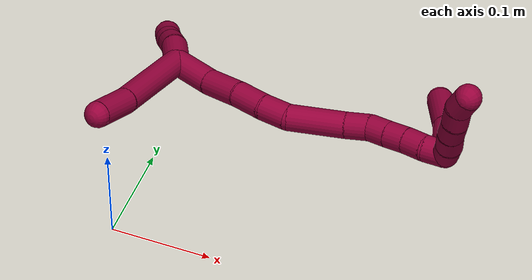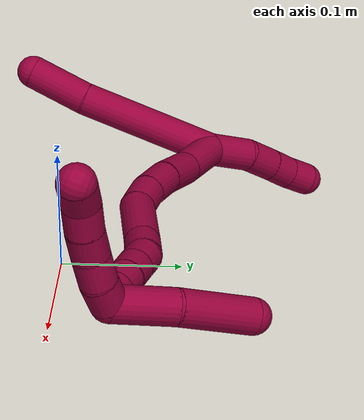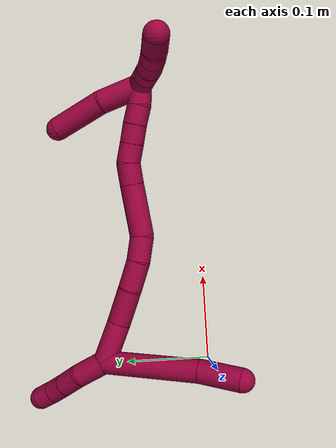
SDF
<sdf version="1.7">
 <world name="default">
  <model name="8">
   <static>0</static>
   <link name="8">
    <collision name="collision-cylinder-e_1_2_8">
     <pose>0.004044 0.00127 -0.052372 -3.11734 0.077033 -2.5318</pose>
     <geometry><cylinder><radius>0.0125</radius><length>0.105086</length></cylinder></geometry>
     <surface>
      <friction><ode><mu>1.16</mu><mu2>1.16</mu2><slip1>0</slip1><slip2>0</slip2></ode></friction>
      <contact><ode><kp>1e+06</kp><kd>1</kd><max_vel>0</max_vel><min_depth>0.001</min_depth></ode></contact>
     </surface>
    </collision>
    <visual name="visual-cylinder-e_1_2_8">
     <pose>0.004044 0.00127 -0.052372 -3.11734 0.077033 -2.5318</pose>
     <geometry><cylinder><radius>0.0125</radius><length>0.105086</length></cylinder></geometry>
     <material><ambient>0.584314 0 0.227451 1</ambient></material>
    </visual>
    <collision name="collision-cylinder-e_2_8_6">
     <pose>0.009249 0.000531 -0.12708 3.05186 0.051764 1.04608</pose>
     <geometry><cylinder><radius>0.0125</radius><length>0.044914</length></cylinder></geometry>
     <surface>
      <friction><ode><mu>1.16</mu><mu2>1.16</mu2><slip1>0</slip1><slip2>0</slip2></ode></friction>
      <contact><ode><kp>1e+06</kp><kd>1</kd><max_vel>0</max_vel><min_depth>0.001</min_depth></ode></contact>
     </surface>
    </collision>
    <visual name="visual-cylinder-e_2_8_6">
     <pose>0.009249 0.000531 -0.12708 3.05186 0.051764 1.04608</pose>
     <geometry><cylinder><radius>0.0125</radius><length>0.044914</length></cylinder></geometry>
     <material><ambient>0.584314 0 0.227451 1</ambient></material>
    </visual>
    <collision name="collision-cylinder-e_1_2_9">
     <pose>-0.007266 -0.006409 0.014095 0.426724 -0.438755 -0.09654</pose>
     <geometry><cylinder><radius>0.0125</radius><length>0.034208</length></cylinder></geometry>
     <surface>
      <friction><ode><mu>1.16</mu><mu2>1.16</mu2><slip1>0</slip1><slip2>0</slip2></ode></friction>
      <contact><ode><kp>1e+06</kp><kd>1</kd><max_vel>0</max_vel><min_depth>0.001</min_depth></ode></contact>
     </surface>
    </collision>
    <visual name="visual-cylinder-e_1_2_9">
     <pose>-0.007266 -0.006409 0.014095 0.426724 -0.438755 -0.09654</pose>
     <geometry><cylinder><radius>0.0125</radius><length>0.034208</length></cylinder></geometry>
     <material><ambient>0.584314 0 0.227451 1</ambient></material>
    </visual>
    <collision name="collision-cylinder-e_2_9_10">
     <pose>-0.022415 -0.015649 0.037852 0.285134 -0.66426 -0.098936</pose>
     <geometry><cylinder><radius>0.0125</radius><length>0.025573</length></cylinder></geometry>
     <surface>
      <friction><ode><mu>1.16</mu><mu2>1.16</mu2><slip1>0</slip1><slip2>0</slip2></ode></friction>
      <contact><ode><kp>1e+06</kp><kd>1</kd><max_vel>0</max_vel><min_depth>0.001</min_depth></ode></contact>
     </surface>
    </collision>
    <visual name="visual-cylinder-e_2_9_10">
     <pose>-0.022415 -0.015649 0.037852 0.285134 -0.66426 -0.098936</pose>
     <geometry><cylinder><radius>0.0125</radius><length>0.025573</length></cylinder></geometry>
     <material><ambient>0.584314 0 0.227451 1</ambient></material>
    </visual>
    <collision name="collision-cylinder-e_3_10_11">
     <pose>-0.036554 -0.02045 0.055197 0.250796 -0.667892 -0.087414</pose>
     <geometry><cylinder><radius>0.0125</radius><length>0.020206</length></cylinder></geometry>
     <surface>
      <friction><ode><mu>1.16</mu><mu2>1.16</mu2><slip1>0</slip1><slip2>0</slip2></ode></friction>
      <contact><ode><kp>1e+06</kp><kd>1</kd><max_vel>0</max_vel><min_depth>0.001</min_depth></ode></contact>
     </surface>
    </collision>
    <visual name="visual-cylinder-e_3_10_11">
     <pose>-0.036554 -0.02045 0.055197 0.250796 -0.667892 -0.087414</pose>
     <geometry><cylinder><radius>0.0125</radius><length>0.020206</length></cylinder></geometry>
     <material><ambient>0.584314 0 0.227451 1</ambient></material>
    </visual>
    <collision name="collision-cylinder-e_4_11_5">
     <pose>-0.04814 -0.024811 0.071006 0.286404 -0.561555 -0.083119</pose>
     <geometry><cylinder><radius>0.0125</radius><length>0.020013</length></cylinder></geometry>
     <surface>
      <friction><ode><mu>1.16</mu><mu2>1.16</mu2><slip1>0</slip1><slip2>0</slip2></ode></friction>
      <contact><ode><kp>1e+06</kp><kd>1</kd><max_vel>0</max_vel><min_depth>0.001</min_depth></ode></contact>
     </surface>
    </collision>
    <visual name="visual-cylinder-e_4_11_5">
     <pose>-0.04814 -0.024811 0.071006 0.286404 -0.561555 -0.083119</pose>
     <geometry><cylinder><radius>0.0125</radius><length>0.020013</length></cylinder></geometry>
     <material><ambient>0.584314 0 0.227451 1</ambient></material>
    </visual>
    <collision name="collision-cylinder-e_1_2_12">
     <pose>0.014667 0.016564 -0.005846 -1.9101 0.695692 -0.947177</pose>
     <geometry><cylinder><radius>0.0125</radius><length>0.045768</length></cylinder></geometry>
     <surface>
      <friction><ode><mu>1.16</mu><mu2>1.16</mu2><slip1>0</slip1><slip2>0</slip2></ode></friction>
      <contact><ode><kp>1e+06</kp><kd>1</kd><max_vel>0</max_vel><min_depth>0.001</min_depth></ode></contact>
     </surface>
    </collision>
    <visual name="visual-cylinder-e_1_2_12">
     <pose>0.014667 0.016564 -0.005846 -1.9101 0.695692 -0.947177</pose>
     <geometry><cylinder><radius>0.0125</radius><length>0.045768</length></cylinder></geometry>
     <material><ambient>0.584314 0 0.227451 1</ambient></material>
    </visual>
    <collision name="collision-cylinder-e_2_12_13">
     <pose>0.043643 0.044958 -0.01675 -1.97481 0.838486 -1.1878</pose>
     <geometry><cylinder><radius>0.0125</radius><length>0.038485</length></cylinder></geometry>
     <surface>
      <friction><ode><mu>1.16</mu><mu2>1.16</mu2><slip1>0</slip1><slip2>0</slip2></ode></friction>
      <contact><ode><kp>1e+06</kp><kd>1</kd><max_vel>0</max_vel><min_depth>0.001</min_depth></ode></contact>
     </surface>
    </collision>
    <visual name="visual-cylinder-e_2_12_13">
     <pose>0.043643 0.044958 -0.01675 -1.97481 0.838486 -1.1878</pose>
     <geometry><cylinder><radius>0.0125</radius><length>0.038485</length></cylinder></geometry>
     <material><ambient>0.584314 0 0.227451 1</ambient></material>
    </visual>
    <collision name="collision-cylinder-e_3_13_14">
     <pose>0.068492 0.067782 -0.025084 -1.86039 0.743095 -0.963246</pose>
     <geometry><cylinder><radius>0.0125</radius><length>0.031158</length></cylinder></geometry>
     <surface>
      <friction><ode><mu>1.16</mu><mu2>1.16</mu2><slip1>0</slip1><slip2>0</slip2></ode></friction>
      <contact><ode><kp>1e+06</kp><kd>1</kd><max_vel>0</max_vel><min_depth>0.001</min_depth></ode></contact>
     </surface>
    </collision>
    <visual name="visual-cylinder-e_3_13_14">
     <pose>0.068492 0.067782 -0.025084 -1.86039 0.743095 -0.963246</pose>
     <geometry><cylinder><radius>0.0125</radius><length>0.031158</length></cylinder></geometry>
     <material><ambient>0.584314 0 0.227451 1</ambient></material>
    </visual>
    <collision name="collision-cylinder-e_4_14_15">
     <pose>0.087989 0.088644 -0.028949 -1.63048 0.736149 -0.777138</pose>
     <geometry><cylinder><radius>0.0125</radius><length>0.02668</length></cylinder></geometry>
     <surface>
      <friction><ode><mu>1.16</mu><mu2>1.16</mu2><slip1>0</slip1><slip2>0</slip2></ode></friction>
      <contact><ode><kp>1e+06</kp><kd>1</kd><max_vel>0</max_vel><min_depth>0.001</min_depth></ode></contact>
     </surface>
    </collision>
    <visual name="visual-cylinder-e_4_14_15">
     <pose>0.087989 0.088644 -0.028949 -1.63048 0.736149 -0.777138</pose>
     <geometry><cylinder><radius>0.0125</radius><length>0.02668</length></cylinder></geometry>
     <material><ambient>0.584314 0 0.227451 1</ambient></material>
    </visual>
    <collision name="collision-cylinder-e_5_15_16">
     <pose>0.11679 0.116041 -0.022213 -1.17492 0.807198 -0.554097</pose>
     <geometry><cylinder><radius>0.0125</radius><length>0.054944</length></cylinder></geometry>
     <surface>
      <friction><ode><mu>1.16</mu><mu2>1.16</mu2><slip1>0</slip1><slip2>0</slip2></ode></friction>
      <contact><ode><kp>1e+06</kp><kd>1</kd><max_vel>0</max_vel><min_depth>0.001</min_depth></ode></contact>
     </surface>
    </collision>
    <visual name="visual-cylinder-e_5_15_16">
     <pose>0.11679 0.116041 -0.022213 -1.17492 0.807198 -0.554097</pose>
     <geometry><cylinder><radius>0.0125</radius><length>0.054944</length></cylinder></geometry>
     <material><ambient>0.584314 0 0.227451 1</ambient></material>
    </visual>
    <collision name="collision-cylinder-e_6_16_17">
     <pose>0.145538 0.140367 -0.012409 -1.22117 0.888352 -0.642945</pose>
     <geometry><cylinder><radius>0.0125</radius><length>0.022945</length></cylinder></geometry>
     <surface>
      <friction><ode><mu>1.16</mu><mu2>1.16</mu2><slip1>0</slip1><slip2>0</slip2></ode></friction>
      <contact><ode><kp>1e+06</kp><kd>1</kd><max_vel>0</max_vel><min_depth>0.001</min_depth></ode></contact>
     </surface>
    </collision>
    <visual name="visual-cylinder-e_6_16_17">
     <pose>0.145538 0.140367 -0.012409 -1.22117 0.888352 -0.642945</pose>
     <geometry><cylinder><radius>0.0125</radius><length>0.022945</length></cylinder></geometry>
     <material><ambient>0.584314 0 0.227451 1</ambient></material>
    </visual>
    <collision name="collision-cylinder-e_7_17_18">
     <pose>0.161694 0.153961 -0.011065 -1.7362 0.811071 -0.938369</pose>
     <geometry><cylinder><radius>0.0125</radius><length>0.020008</length></cylinder></geometry>
     <surface>
      <friction><ode><mu>1.16</mu><mu2>1.16</mu2><slip1>0</slip1><slip2>0</slip2></ode></friction>
      <contact><ode><kp>1e+06</kp><kd>1</kd><max_vel>0</max_vel><min_depth>0.001</min_depth></ode></contact>
     </surface>
    </collision>
    <visual name="visual-cylinder-e_7_17_18">
     <pose>0.161694 0.153961 -0.011065 -1.7362 0.811071 -0.938369</pose>
     <geometry><cylinder><radius>0.0125</radius><length>0.020008</length></cylinder></geometry>
     <material><ambient>0.584314 0 0.227451 1</ambient></material>
    </visual>
    <collision name="collision-cylinder-e_8_18_19">
     <pose>0.176387 0.167372 -0.013185 -1.71865 0.838479 -0.954236</pose>
     <geometry><cylinder><radius>0.0125</radius><length>0.020008</length></cylinder></geometry>
     <surface>
      <friction><ode><mu>1.16</mu><mu2>1.16</mu2><slip1>0</slip1><slip2>0</slip2></ode></friction>
      <contact><ode><kp>1e+06</kp><kd>1</kd><max_vel>0</max_vel><min_depth>0.001</min_depth></ode></contact>
     </surface>
    </collision>
    <visual name="visual-cylinder-e_8_18_19">
     <pose>0.176387 0.167372 -0.013185 -1.71865 0.838479 -0.954236</pose>
     <geometry><cylinder><radius>0.0125</radius><length>0.020008</length></cylinder></geometry>
     <material><ambient>0.584314 0 0.227451 1</ambient></material>
    </visual>
    <collision name="collision-cylinder-e_9_19_20">
     <pose>0.190904 0.180882 -0.015722 -1.79227 0.786202 -0.956585</pose>
     <geometry><cylinder><radius>0.0125</radius><length>0.020005</length></cylinder></geometry>
     <surface>
      <friction><ode><mu>1.16</mu><mu2>1.16</mu2><slip1>0</slip1><slip2>0</slip2></ode></friction>
      <contact><ode><kp>1e+06</kp><kd>1</kd><max_vel>0</max_vel><min_depth>0.001</min_depth></ode></contact>
     </surface>
    </collision>
    <visual name="visual-cylinder-e_9_19_20">
     <pose>0.190904 0.180882 -0.015722 -1.79227 0.786202 -0.956585</pose>
     <geometry><cylinder><radius>0.0125</radius><length>0.020005</length></cylinder></geometry>
     <material><ambient>0.584314 0 0.227451 1</ambient></material>
    </visual>
    <collision name="collision-cylinder-e_10_20_1">
     <pose>0.205107 0.194772 -0.016721 -1.49173 0.792996 -0.738172</pose>
     <geometry><cylinder><radius>0.0125</radius><length>0.02</length></cylinder></geometry>
     <surface>
      <friction><ode><mu>1.16</mu><mu2>1.16</mu2><slip1>0</slip1><slip2>0</slip2></ode></friction>
      <contact><ode><kp>1e+06</kp><kd>1</kd><max_vel>0</max_vel><min_depth>0.001</min_depth></ode></contact>
     </surface>
    </collision>
    <visual name="visual-cylinder-e_10_20_1">
     <pose>0.205107 0.194772 -0.016721 -1.49173 0.792996 -0.738172</pose>
     <geometry><cylinder><radius>0.0125</radius><length>0.02</length></cylinder></geometry>
     <material><ambient>0.584314 0 0.227451 1</ambient></material>
    </visual>
    <collision name="collision-cylinder-e_1_1_21">
     <pose>0.207341 0.193347 0.003538 0.403834 -0.224424 -0.046127</pose>
     <geometry><cylinder><radius>0.0125</radius><length>0.043958</length></cylinder></geometry>
     <surface>
      <friction><ode><mu>1.16</mu><mu2>1.16</mu2><slip1>0</slip1><slip2>0</slip2></ode></friction>
      <contact><ode><kp>1e+06</kp><kd>1</kd><max_vel>0</max_vel><min_depth>0.001</min_depth></ode></contact>
     </surface>
    </collision>
    <visual name="visual-cylinder-e_1_1_21">
     <pose>0.207341 0.193347 0.003538 0.403834 -0.224424 -0.046127</pose>
     <geometry><cylinder><radius>0.0125</radius><length>0.043958</length></cylinder></geometry>
     <material><ambient>0.584314 0 0.227451 1</ambient></material>
    </visual>
    <collision name="collision-cylinder-e_2_21_4">
     <pose>0.191283 0.175168 0.047017 0.3895 -0.409873 -0.081953</pose>
     <geometry><cylinder><radius>0.0125</radius><length>0.056042</length></cylinder></geometry>
     <surface>
      <friction><ode><mu>1.16</mu><mu2>1.16</mu2><slip1>0</slip1><slip2>0</slip2></ode></friction>
      <contact><ode><kp>1e+06</kp><kd>1</kd><max_vel>0</max_vel><min_depth>0.001</min_depth></ode></contact>
     </surface>
    </collision>
    <visual name="visual-cylinder-e_2_21_4">
     <pose>0.191283 0.175168 0.047017 0.3895 -0.409873 -0.081953</pose>
     <geometry><cylinder><radius>0.0125</radius><length>0.056042</length></cylinder></geometry>
     <material><ambient>0.584314 0 0.227451 1</ambient></material>
    </visual>
    <collision name="collision-cylinder-e_1_1_22">
     <pose>0.220262 0.198758 -0.021311 2.61226 0.932306 2.1534</pose>
     <geometry><cylinder><radius>0.0125</radius><length>0.02</length></cylinder></geometry>
     <surface>
      <friction><ode><mu>1.16</mu><mu2>1.16</mu2><slip1>0</slip1><slip2>0</slip2></ode></friction>
      <contact><ode><kp>1e+06</kp><kd>1</kd><max_vel>0</max_vel><min_depth>0.001</min_depth></ode></contact>
     </surface>
    </collision>
    <visual name="visual-cylinder-e_1_1_22">
     <pose>0.220262 0.198758 -0.021311 2.61226 0.932306 2.1534</pose>
     <geometry><cylinder><radius>0.0125</radius><length>0.02</length></cylinder></geometry>
     <material><ambient>0.584314 0 0.227451 1</ambient></material>
    </visual>
    <collision name="collision-cylinder-e_2_22_23">
     <pose>0.235744 0.191096 -0.031232 2.36941 0.840797 1.66576</pose>
     <geometry><cylinder><radius>0.0125</radius><length>0.02</length></cylinder></geometry>
     <surface>
      <friction><ode><mu>1.16</mu><mu2>1.16</mu2><slip1>0</slip1><slip2>0</slip2></ode></friction>
      <contact><ode><kp>1e+06</kp><kd>1</kd><max_vel>0</max_vel><min_depth>0.001</min_depth></ode></contact>
     </surface>
    </collision>
    <visual name="visual-cylinder-e_2_22_23">
     <pose>0.235744 0.191096 -0.031232 2.36941 0.840797 1.66576</pose>
     <geometry><cylinder><radius>0.0125</radius><length>0.02</length></cylinder></geometry>
     <material><ambient>0.584314 0 0.227451 1</ambient></material>
    </visual>
    <collision name="collision-cylinder-e_3_23_24">
     <pose>0.251383 0.182379 -0.040065 2.35513 0.959296 1.79515</pose>
     <geometry><cylinder><radius>0.0125</radius><length>0.02</length></cylinder></geometry>
     <surface>
      <friction><ode><mu>1.16</mu><mu2>1.16</mu2><slip1>0</slip1><slip2>0</slip2></ode></friction>
      <contact><ode><kp>1e+06</kp><kd>1</kd><max_vel>0</max_vel><min_depth>0.001</min_depth></ode></contact>
     </surface>
    </collision>
    <visual name="visual-cylinder-e_3_23_24">
     <pose>0.251383 0.182379 -0.040065 2.35513 0.959296 1.79515</pose>
     <geometry><cylinder><radius>0.0125</radius><length>0.02</length></cylinder></geometry>
     <material><ambient>0.584314 0 0.227451 1</ambient></material>
    </visual>
    <collision name="collision-cylinder-e_4_24_25">
     <pose>0.267546 0.173376 -0.047584 2.18244 0.923096 1.52619</pose>
     <geometry><cylinder><radius>0.0125</radius><length>0.02</length></cylinder></geometry>
     <surface>
      <friction><ode><mu>1.16</mu><mu2>1.16</mu2><slip1>0</slip1><slip2>0</slip2></ode></friction>
      <contact><ode><kp>1e+06</kp><kd>1</kd><max_vel>0</max_vel><min_depth>0.001</min_depth></ode></contact>
     </surface>
    </collision>
    <visual name="visual-cylinder-e_4_24_25">
     <pose>0.267546 0.173376 -0.047584 2.18244 0.923096 1.52619</pose>
     <geometry><cylinder><radius>0.0125</radius><length>0.02</length></cylinder></geometry>
     <material><ambient>0.584314 0 0.227451 1</ambient></material>
    </visual>
    <collision name="collision-cylinder-e_5_25_3">
     <pose>0.284872 0.166229 -0.05382 2.46916 1.20869 2.20454</pose>
     <geometry><cylinder><radius>0.0125</radius><length>0.02</length></cylinder></geometry>
     <surface>
      <friction><ode><mu>1.16</mu><mu2>1.16</mu2><slip1>0</slip1><slip2>0</slip2></ode></friction>
      <contact><ode><kp>1e+06</kp><kd>1</kd><max_vel>0</max_vel><min_depth>0.001</min_depth></ode></contact>
     </surface>
    </collision>
    <visual name="visual-cylinder-e_5_25_3">
     <pose>0.284872 0.166229 -0.05382 2.46916 1.20869 2.20454</pose>
     <geometry><cylinder><radius>0.0125</radius><length>0.02</length></cylinder></geometry>
     <material><ambient>0.584314 0 0.227451 1</ambient></material>
    </visual>
    <collision name="collision-sphere-3">
     <pose>0.294224 0.164023 -0.056591 0 -0 0</pose>
     <geometry><sphere><radius>0.0125</radius></sphere></geometry>
     <surface>
      <friction><ode><mu>1.16</mu><mu2>1.16</mu2><slip1>0</slip1><slip2>0</slip2></ode></friction>
      <contact><ode><kp>1e+06</kp><kd>1</kd><max_vel>0</max_vel><min_depth>0.001</min_depth></ode></contact>
     </surface>
    </collision>
    <visual name="visual-sphere-3">
     <pose>0.294224 0.164023 -0.056591 0 -0 0</pose>
     <geometry><sphere><radius>0.0125</radius></sphere></geometry>
     <material><ambient>0.584314 0 0.227451 1</ambient></material>
    </visual>
    <collision name="collision-sphere-25">
     <pose>0.275521 0.168436 -0.051049 0 -0 0</pose>
     <geometry><sphere><radius>0.0125</radius></sphere></geometry>
     <surface>
      <friction><ode><mu>1.16</mu><mu2>1.16</mu2><slip1>0</slip1><slip2>0</slip2></ode></friction>
      <contact><ode><kp>1e+06</kp><kd>1</kd><max_vel>0</max_vel><min_depth>0.001</min_depth></ode></contact>
     </surface>
    </collision>
    <visual name="visual-sphere-25">
     <pose>0.275521 0.168436 -0.051049 0 -0 0</pose>
     <geometry><sphere><radius>0.0125</radius></sphere></geometry>
     <material><ambient>0.584314 0 0.227451 1</ambient></material>
    </visual>
    <collision name="collision-sphere-24">
     <pose>0.259571 0.178315 -0.04412 0 -0 0</pose>
     <geometry><sphere><radius>0.0125</radius></sphere></geometry>
     <surface>
      <friction><ode><mu>1.16</mu><mu2>1.16</mu2><slip1>0</slip1><slip2>0</slip2></ode></friction>
      <contact><ode><kp>1e+06</kp><kd>1</kd><max_vel>0</max_vel><min_depth>0.001</min_depth></ode></contact>
     </surface>
    </collision>
    <visual name="visual-sphere-24">
     <pose>0.259571 0.178315 -0.04412 0 -0 0</pose>
     <geometry><sphere><radius>0.0125</radius></sphere></geometry>
     <material><ambient>0.584314 0 0.227451 1</ambient></material>
    </visual>
    <collision name="collision-sphere-23">
     <pose>0.243196 0.186443 -0.03601 0 -0 0</pose>
     <geometry><sphere><radius>0.0125</radius></sphere></geometry>
     <surface>
      <friction><ode><mu>1.16</mu><mu2>1.16</mu2><slip1>0</slip1><slip2>0</slip2></ode></friction>
      <contact><ode><kp>1e+06</kp><kd>1</kd><max_vel>0</max_vel><min_depth>0.001</min_depth></ode></contact>
     </surface>
    </collision>
    <visual name="visual-sphere-23">
     <pose>0.243196 0.186443 -0.03601 0 -0 0</pose>
     <geometry><sphere><radius>0.0125</radius></sphere></geometry>
     <material><ambient>0.584314 0 0.227451 1</ambient></material>
    </visual>
    <collision name="collision-sphere-22">
     <pose>0.228292 0.195748 -0.026455 0 -0 0</pose>
     <geometry><sphere><radius>0.0125</radius></sphere></geometry>
     <surface>
      <friction><ode><mu>1.16</mu><mu2>1.16</mu2><slip1>0</slip1><slip2>0</slip2></ode></friction>
      <contact><ode><kp>1e+06</kp><kd>1</kd><max_vel>0</max_vel><min_depth>0.001</min_depth></ode></contact>
     </surface>
    </collision>
    <visual name="visual-sphere-22">
     <pose>0.228292 0.195748 -0.026455 0 -0 0</pose>
     <geometry><sphere><radius>0.0125</radius></sphere></geometry>
     <material><ambient>0.584314 0 0.227451 1</ambient></material>
    </visual>
    <collision name="collision-sphere-4">
     <pose>0.180117 0.165409 0.070792 0 -0 0</pose>
     <geometry><sphere><radius>0.0125</radius></sphere></geometry>
     <surface>
      <friction><ode><mu>1.16</mu><mu2>1.16</mu2><slip1>0</slip1><slip2>0</slip2></ode></friction>
      <contact><ode><kp>1e+06</kp><kd>1</kd><max_vel>0</max_vel><min_depth>0.001</min_depth></ode></contact>
     </surface>
    </collision>
    <visual name="visual-sphere-4">
     <pose>0.180117 0.165409 0.070792 0 -0 0</pose>
     <geometry><sphere><radius>0.0125</radius></sphere></geometry>
     <material><ambient>0.584314 0 0.227451 1</ambient></material>
    </visual>
    <collision name="collision-sphere-21">
     <pose>0.20245 0.184928 0.023242 0 -0 0</pose>
     <geometry><sphere><radius>0.0125</radius></sphere></geometry>
     <surface>
      <friction><ode><mu>1.16</mu><mu2>1.16</mu2><slip1>0</slip1><slip2>0</slip2></ode></friction>
      <contact><ode><kp>1e+06</kp><kd>1</kd><max_vel>0</max_vel><min_depth>0.001</min_depth></ode></contact>
     </surface>
    </collision>
    <visual name="visual-sphere-21">
     <pose>0.20245 0.184928 0.023242 0 -0 0</pose>
     <geometry><sphere><radius>0.0125</radius></sphere></geometry>
     <material><ambient>0.584314 0 0.227451 1</ambient></material>
    </visual>
    <collision name="collision-sphere-1">
     <pose>0.212232 0.201767 -0.016166 0 -0 0</pose>
     <geometry><sphere><radius>0.0125</radius></sphere></geometry>
     <surface>
      <friction><ode><mu>1.16</mu><mu2>1.16</mu2><slip1>0</slip1><slip2>0</slip2></ode></friction>
      <contact><ode><kp>1e+06</kp><kd>1</kd><max_vel>0</max_vel><min_depth>0.001</min_depth></ode></contact>
     </surface>
    </collision>
    <visual name="visual-sphere-1">
     <pose>0.212232 0.201767 -0.016166 0 -0 0</pose>
     <geometry><sphere><radius>0.0125</radius></sphere></geometry>
     <material><ambient>0.584314 0 0.227451 1</ambient></material>
    </visual>
    <collision name="collision-sphere-11">
     <pose>-0.042811 -0.022418 0.062881 0 -0 0</pose>
     <geometry><sphere><radius>0.0125</radius></sphere></geometry>
     <surface>
      <friction><ode><mu>1.16</mu><mu2>1.16</mu2><slip1>0</slip1><slip2>0</slip2></ode></friction>
      <contact><ode><kp>1e+06</kp><kd>1</kd><max_vel>0</max_vel><min_depth>0.001</min_depth></ode></contact>
     </surface>
    </collision>
    <visual name="visual-sphere-11">
     <pose>-0.042811 -0.022418 0.062881 0 -0 0</pose>
     <geometry><sphere><radius>0.0125</radius></sphere></geometry>
     <material><ambient>0.584314 0 0.227451 1</ambient></material>
    </visual>
    <collision name="collision-sphere-10">
     <pose>-0.030297 -0.018481 0.047514 0 -0 0</pose>
     <geometry><sphere><radius>0.0125</radius></sphere></geometry>
     <surface>
      <friction><ode><mu>1.16</mu><mu2>1.16</mu2><slip1>0</slip1><slip2>0</slip2></ode></friction>
      <contact><ode><kp>1e+06</kp><kd>1</kd><max_vel>0</max_vel><min_depth>0.001</min_depth></ode></contact>
     </surface>
    </collision>
    <visual name="visual-sphere-10">
     <pose>-0.030297 -0.018481 0.047514 0 -0 0</pose>
     <geometry><sphere><radius>0.0125</radius></sphere></geometry>
     <material><ambient>0.584314 0 0.227451 1</ambient></material>
    </visual>
    <collision name="collision-sphere-6">
     <pose>0.010411 -0.001479 -0.149417 0 -0 0</pose>
     <geometry><sphere><radius>0.0125</radius></sphere></geometry>
     <surface>
      <friction><ode><mu>1.16</mu><mu2>1.16</mu2><slip1>0</slip1><slip2>0</slip2></ode></friction>
      <contact><ode><kp>1e+06</kp><kd>1</kd><max_vel>0</max_vel><min_depth>0.001</min_depth></ode></contact>
     </surface>
    </collision>
    <visual name="visual-sphere-6">
     <pose>0.010411 -0.001479 -0.149417 0 -0 0</pose>
     <geometry><sphere><radius>0.0125</radius></sphere></geometry>
     <material><ambient>0.584314 0 0.227451 1</ambient></material>
    </visual>
    <collision name="collision-sphere-9">
     <pose>-0.014532 -0.012817 0.028191 0 -0 0</pose>
     <geometry><sphere><radius>0.0125</radius></sphere></geometry>
     <surface>
      <friction><ode><mu>1.16</mu><mu2>1.16</mu2><slip1>0</slip1><slip2>0</slip2></ode></friction>
      <contact><ode><kp>1e+06</kp><kd>1</kd><max_vel>0</max_vel><min_depth>0.001</min_depth></ode></contact>
     </surface>
    </collision>
    <visual name="visual-sphere-9">
     <pose>-0.014532 -0.012817 0.028191 0 -0 0</pose>
     <geometry><sphere><radius>0.0125</radius></sphere></geometry>
     <material><ambient>0.584314 0 0.227451 1</ambient></material>
    </visual>
    <collision name="collision-sphere-2">
     <geometry><sphere><radius>0.0125</radius></sphere></geometry>
     <surface>
      <friction><ode><mu>1.16</mu><mu2>1.16</mu2><slip1>0</slip1><slip2>0</slip2></ode></friction>
      <contact><ode><kp>1e+06</kp><kd>1</kd><max_vel>0</max_vel><min_depth>0.001</min_depth></ode></contact>
     </surface>
    </collision>
    <visual name="visual-sphere-2">
     <geometry><sphere><radius>0.0125</radius></sphere></geometry>
     <material><ambient>0.584314 0 0.227451 1</ambient></material>
    </visual>
    <collision name="collision-sphere-19">
     <pose>0.183826 0.173988 -0.01417 0 -0 0</pose>
     <geometry><sphere><radius>0.0125</radius></sphere></geometry>
     <surface>
      <friction><ode><mu>1.16</mu><mu2>1.16</mu2><slip1>0</slip1><slip2>0</slip2></ode></friction>
      <contact><ode><kp>1e+06</kp><kd>1</kd><max_vel>0</max_vel><min_depth>0.001</min_depth></ode></contact>
     </surface>
    </collision>
    <visual name="visual-sphere-19">
     <pose>0.183826 0.173988 -0.01417 0 -0 0</pose>
     <geometry><sphere><radius>0.0125</radius></sphere></geometry>
     <material><ambient>0.584314 0 0.227451 1</ambient></material>
    </visual>
    <collision name="collision-sphere-8">
     <pose>0.008087 0.002541 -0.104743 0 -0 0</pose>
     <geometry><sphere><radius>0.0125</radius></sphere></geometry>
     <surface>
      <friction><ode><mu>1.16</mu><mu2>1.16</mu2><slip1>0</slip1><slip2>0</slip2></ode></friction>
      <contact><ode><kp>1e+06</kp><kd>1</kd><max_vel>0</max_vel><min_depth>0.001</min_depth></ode></contact>
     </surface>
    </collision>
    <visual name="visual-sphere-8">
     <pose>0.008087 0.002541 -0.104743 0 -0 0</pose>
     <geometry><sphere><radius>0.0125</radius></sphere></geometry>
     <material><ambient>0.584314 0 0.227451 1</ambient></material>
    </visual>
    <collision name="collision-sphere-5">
     <pose>-0.053468 -0.027204 0.079131 0 -0 0</pose>
     <geometry><sphere><radius>0.0125</radius></sphere></geometry>
     <surface>
      <friction><ode><mu>1.16</mu><mu2>1.16</mu2><slip1>0</slip1><slip2>0</slip2></ode></friction>
      <contact><ode><kp>1e+06</kp><kd>1</kd><max_vel>0</max_vel><min_depth>0.001</min_depth></ode></contact>
     </surface>
    </collision>
    <visual name="visual-sphere-5">
     <pose>-0.053468 -0.027204 0.079131 0 -0 0</pose>
     <geometry><sphere><radius>0.0125</radius></sphere></geometry>
     <material><ambient>0.584314 0 0.227451 1</ambient></material>
    </visual>
    <collision name="collision-sphere-12">
     <pose>0.029333 0.033129 -0.011693 0 -0 0</pose>
     <geometry><sphere><radius>0.0125</radius></sphere></geometry>
     <surface>
      <friction><ode><mu>1.16</mu><mu2>1.16</mu2><slip1>0</slip1><slip2>0</slip2></ode></friction>
      <contact><ode><kp>1e+06</kp><kd>1</kd><max_vel>0</max_vel><min_depth>0.001</min_depth></ode></contact>
     </surface>
    </collision>
    <visual name="visual-sphere-12">
     <pose>0.029333 0.033129 -0.011693 0 -0 0</pose>
     <geometry><sphere><radius>0.0125</radius></sphere></geometry>
     <material><ambient>0.584314 0 0.227451 1</ambient></material>
    </visual>
    <collision name="collision-sphere-13">
     <pose>0.057952 0.056788 -0.021808 0 -0 0</pose>
     <geometry><sphere><radius>0.0125</radius></sphere></geometry>
     <surface>
      <friction><ode><mu>1.16</mu><mu2>1.16</mu2><slip1>0</slip1><slip2>0</slip2></ode></friction>
      <contact><ode><kp>1e+06</kp><kd>1</kd><max_vel>0</max_vel><min_depth>0.001</min_depth></ode></contact>
     </surface>
    </collision>
    <visual name="visual-sphere-13">
     <pose>0.057952 0.056788 -0.021808 0 -0 0</pose>
     <geometry><sphere><radius>0.0125</radius></sphere></geometry>
     <material><ambient>0.584314 0 0.227451 1</ambient></material>
    </visual>
    <collision name="collision-sphere-14">
     <pose>0.079032 0.078776 -0.02836 0 -0 0</pose>
     <geometry><sphere><radius>0.0125</radius></sphere></geometry>
     <surface>
      <friction><ode><mu>1.16</mu><mu2>1.16</mu2><slip1>0</slip1><slip2>0</slip2></ode></friction>
      <contact><ode><kp>1e+06</kp><kd>1</kd><max_vel>0</max_vel><min_depth>0.001</min_depth></ode></contact>
     </surface>
    </collision>
    <visual name="visual-sphere-14">
     <pose>0.079032 0.078776 -0.02836 0 -0 0</pose>
     <geometry><sphere><radius>0.0125</radius></sphere></geometry>
     <material><ambient>0.584314 0 0.227451 1</ambient></material>
    </visual>
    <collision name="collision-sphere-15">
     <pose>0.096946 0.098512 -0.029539 0 -0 0</pose>
     <geometry><sphere><radius>0.0125</radius></sphere></geometry>
     <surface>
      <friction><ode><mu>1.16</mu><mu2>1.16</mu2><slip1>0</slip1><slip2>0</slip2></ode></friction>
      <contact><ode><kp>1e+06</kp><kd>1</kd><max_vel>0</max_vel><min_depth>0.001</min_depth></ode></contact>
     </surface>
    </collision>
    <visual name="visual-sphere-15">
     <pose>0.096946 0.098512 -0.029539 0 -0 0</pose>
     <geometry><sphere><radius>0.0125</radius></sphere></geometry>
     <material><ambient>0.584314 0 0.227451 1</ambient></material>
    </visual>
    <collision name="collision-sphere-16">
     <pose>0.136635 0.133569 -0.014888 0 -0 0</pose>
     <geometry><sphere><radius>0.0125</radius></sphere></geometry>
     <surface>
      <friction><ode><mu>1.16</mu><mu2>1.16</mu2><slip1>0</slip1><slip2>0</slip2></ode></friction>
      <contact><ode><kp>1e+06</kp><kd>1</kd><max_vel>0</max_vel><min_depth>0.001</min_depth></ode></contact>
     </surface>
    </collision>
    <visual name="visual-sphere-16">
     <pose>0.136635 0.133569 -0.014888 0 -0 0</pose>
     <geometry><sphere><radius>0.0125</radius></sphere></geometry>
     <material><ambient>0.584314 0 0.227451 1</ambient></material>
    </visual>
    <collision name="collision-sphere-17">
     <pose>0.154441 0.147165 -0.00993 0 -0 0</pose>
     <geometry><sphere><radius>0.0125</radius></sphere></geometry>
     <surface>
      <friction><ode><mu>1.16</mu><mu2>1.16</mu2><slip1>0</slip1><slip2>0</slip2></ode></friction>
      <contact><ode><kp>1e+06</kp><kd>1</kd><max_vel>0</max_vel><min_depth>0.001</min_depth></ode></contact>
     </surface>
    </collision>
    <visual name="visual-sphere-17">
     <pose>0.154441 0.147165 -0.00993 0 -0 0</pose>
     <geometry><sphere><radius>0.0125</radius></sphere></geometry>
     <material><ambient>0.584314 0 0.227451 1</ambient></material>
    </visual>
    <collision name="collision-sphere-18">
     <pose>0.168947 0.160756 -0.012199 0 -0 0</pose>
     <geometry><sphere><radius>0.0125</radius></sphere></geometry>
     <surface>
      <friction><ode><mu>1.16</mu><mu2>1.16</mu2><slip1>0</slip1><slip2>0</slip2></ode></friction>
      <contact><ode><kp>1e+06</kp><kd>1</kd><max_vel>0</max_vel><min_depth>0.001</min_depth></ode></contact>
     </surface>
    </collision>
    <visual name="visual-sphere-18">
     <pose>0.168947 0.160756 -0.012199 0 -0 0</pose>
     <geometry><sphere><radius>0.0125</radius></sphere></geometry>
     <material><ambient>0.584314 0 0.227451 1</ambient></material>
    </visual>
    <collision name="collision-sphere-20">
     <pose>0.197983 0.187777 -0.017275 0 -0 0</pose>
     <geometry><sphere><radius>0.0125</radius></sphere></geometry>
     <surface>
      <friction><ode><mu>1.16</mu><mu2>1.16</mu2><slip1>0</slip1><slip2>0</slip2></ode></friction>
      <contact><ode><kp>1e+06</kp><kd>1</kd><max_vel>0</max_vel><min_depth>0.001</min_depth></ode></contact>
     </surface>
    </collision>
    <visual name="visual-sphere-20">
     <pose>0.197983 0.187777 -0.017275 0 -0 0</pose>
     <geometry><sphere><radius>0.0125</radius></sphere></geometry>
     <material><ambient>0.584314 0 0.227451 1</ambient></material>
    </visual>
    <inertial>
     <pose>0.099495 0.087581 -0.017893 0 -0 0</pose>
     <mass>0.75</mass>
     <inertia>
      <ixx>-7.9e-05</ixx>
      <ixy>0</ixy>
      <ixz>0</ixz>
      <iyy>7.7e-05</iyy>
      <iyz>0</iyz>
      <izz>-5.3e-05</izz>
     </inertia>
    </inertial>
   </link>
   <pose>0.019464 0.122446 0.118797 -2.03745 -0.812472 0.1794</pose>
  </model>
 </world>
</sdf>
